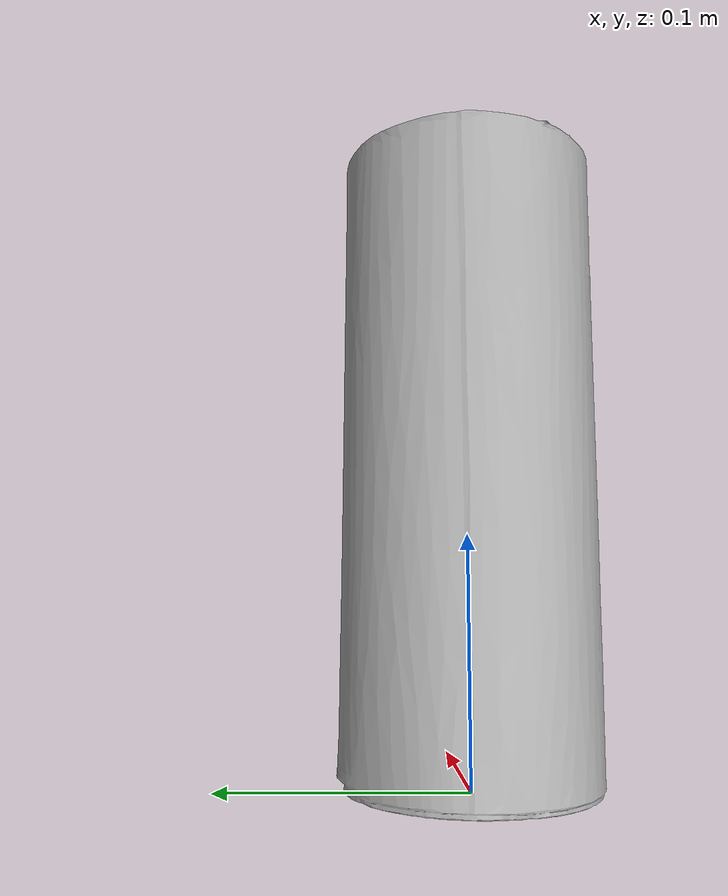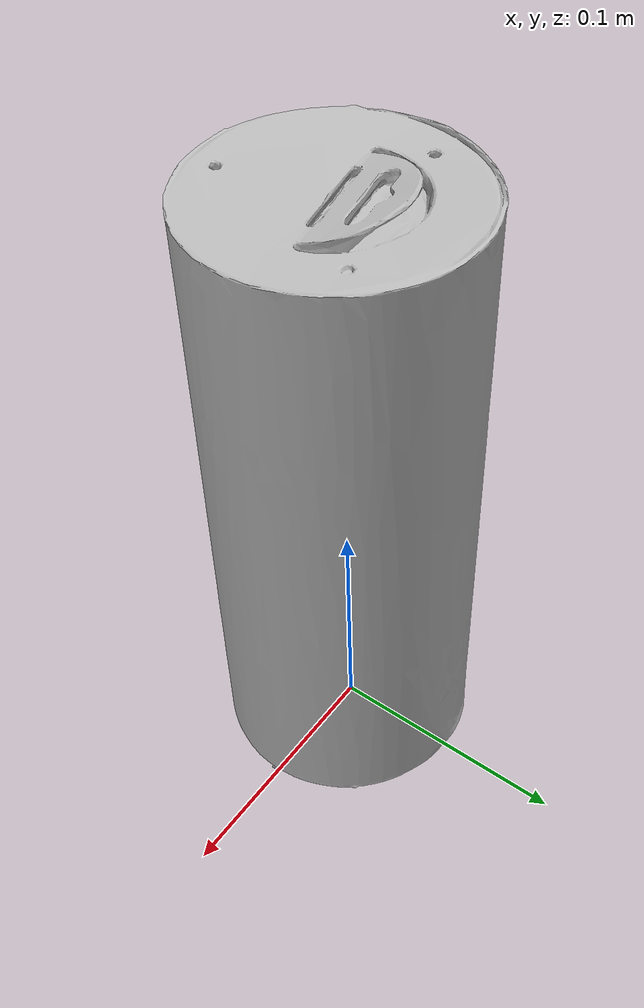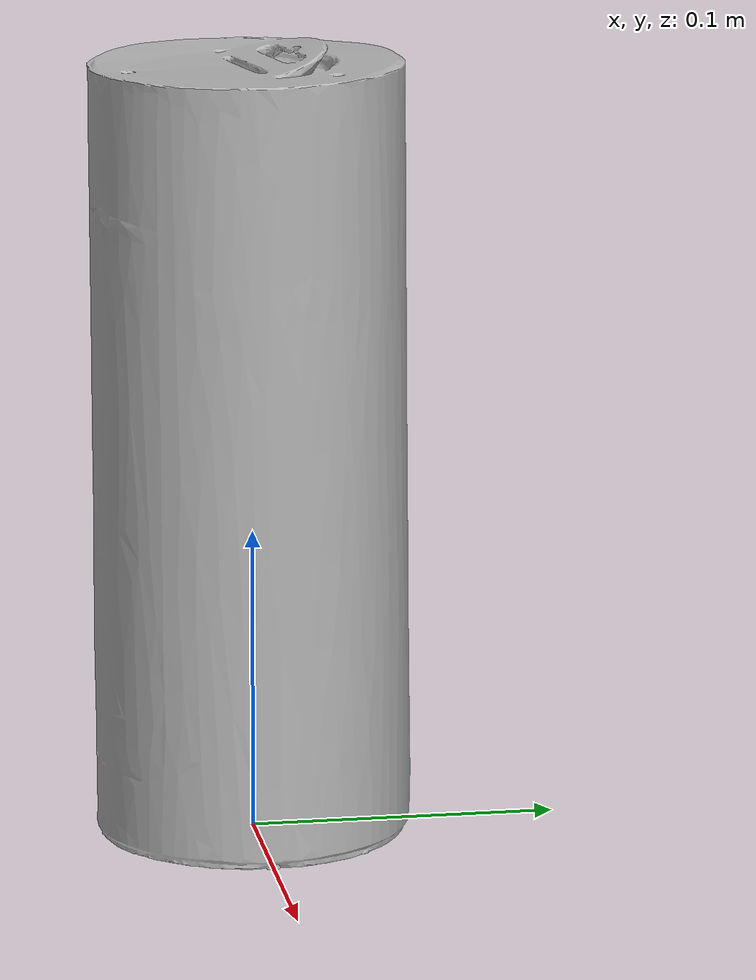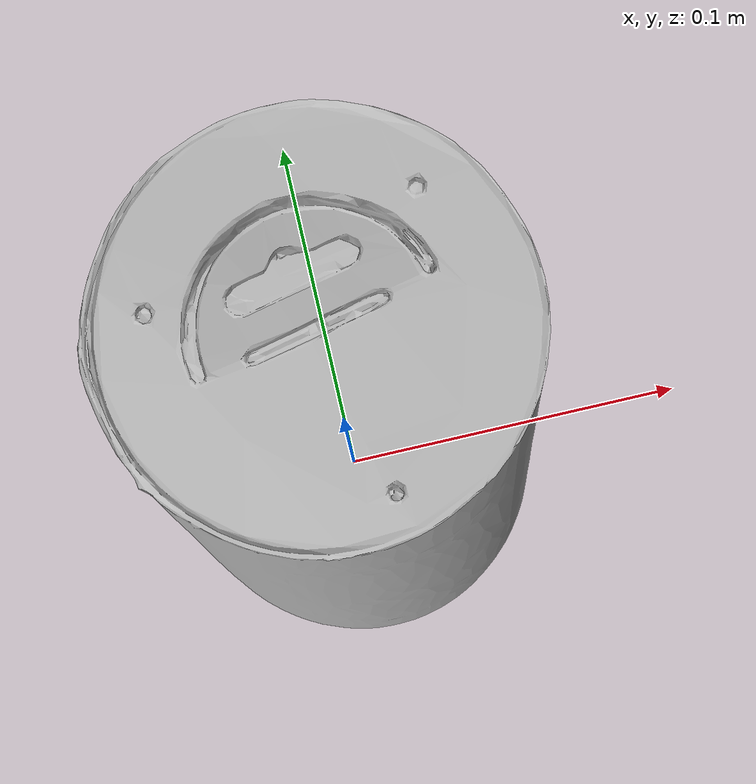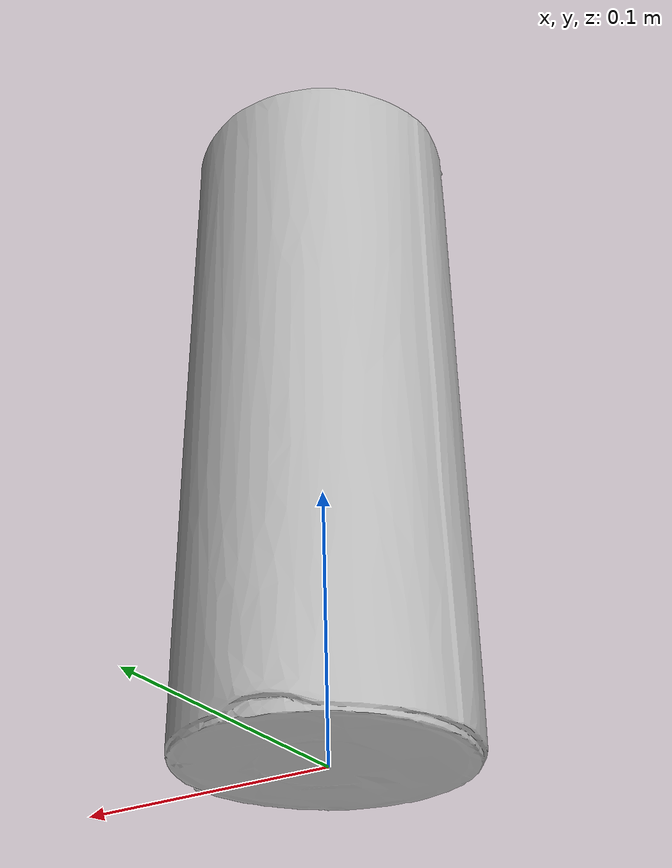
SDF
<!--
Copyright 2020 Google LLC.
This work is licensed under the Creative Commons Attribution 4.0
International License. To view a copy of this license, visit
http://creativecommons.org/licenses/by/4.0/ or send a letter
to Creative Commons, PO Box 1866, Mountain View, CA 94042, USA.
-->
<?xml version="1.0" ?>
<sdf version="1.6">
  <model name="Logitech_Ultimate_Ears_Boom_Wireless_Speaker_Night_Black">
    <link name="link_0">
      <visual name="visual">
        <geometry>
          <mesh>
            <uri>meshes/model.obj</uri>
          </mesh>
        </geometry>
      </visual>
      <collision name="collision_0">
        <geometry>
          <mesh>
            <uri>meshes/model.obj</uri>
          </mesh>
        </geometry>
      </collision>
    </link>
  </model>
</sdf>
